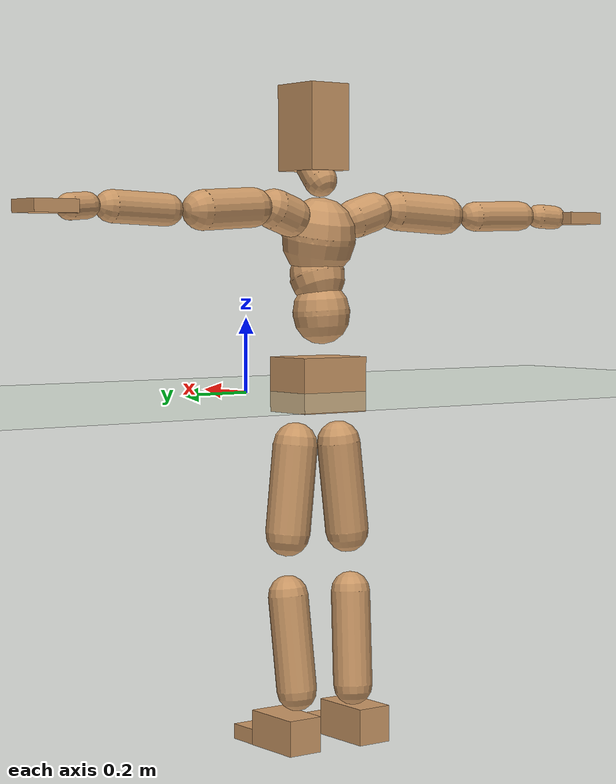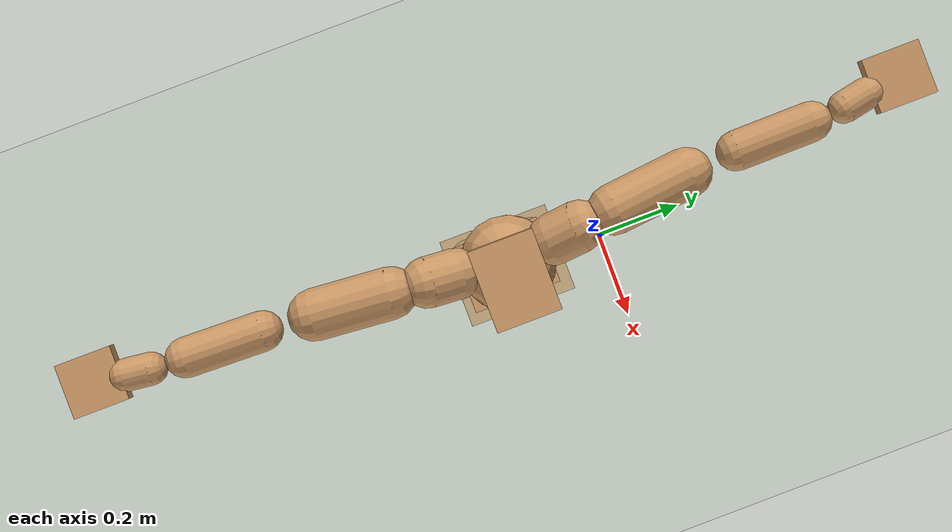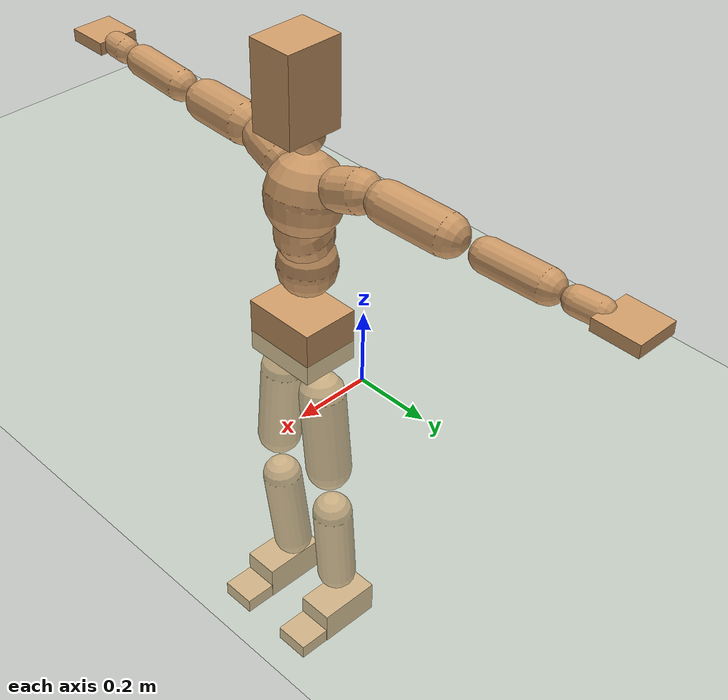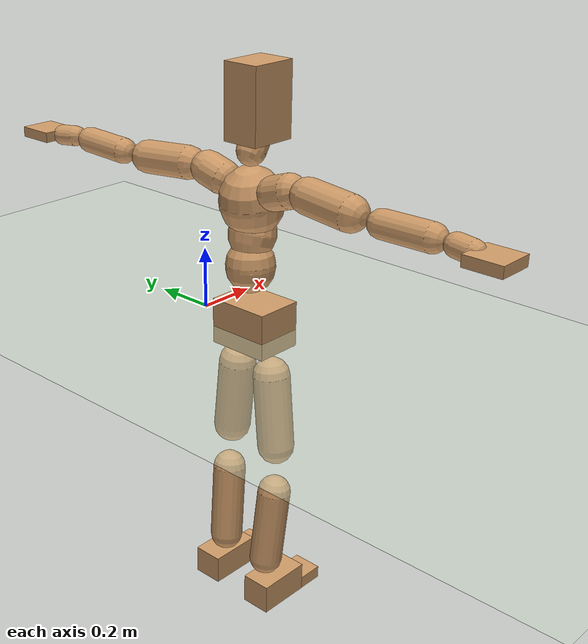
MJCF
<mujoco model="humanoid">
  <compiler coordinate="local" />
  <default>
    <joint damping="0.0" armature="0.01" stiffness="0.0" limited="true" />
    <geom conaffinity="1" condim="3" contype="7" margin="0.001" rgba="0.8 0.6 .4 1" />
  </default>
  <asset>
    <texture type="skybox" builtin="gradient" rgb1=".4 .5 .6" rgb2="0 0 0" width="100" height="100" />
    <texture builtin="flat" height="1278" mark="cross" markrgb="1 1 1" name="texgeom" random="0.01" rgb1="0.8 0.6 0.4" rgb2="0.8 0.6 0.4" type="cube" width="127" />
    <texture builtin="checker" height="100" name="texplane" rgb1="0 0 0" rgb2="0.8 0.8 0.8" type="2d" width="100" />
    <material name="MatPlane" reflectance="0.5" shininess="1" specular="1" texrepeat="60 60" texture="texplane" />
    <material name="geom" texture="texgeom" texuniform="true" />
  </asset>
  <worldbody>
    <light cutoff="100" diffuse="1 1 1" dir="-0 0 -1.3" directional="true" exponent="1" pos="0 0 1.3" specular=".1 .1 .1" />
    <geom conaffinity="1" condim="3" name="floor" pos="0 0 0" rgba="0.8 0.9 0.8 1" size="100 100 .2" type="plane" material="MatPlane" />
    <body name="Pelvis" pos="-0.0033 -0.2278 0.0264">
      <freejoint name="Pelvis" />
      <geom type="box" pos="-0.0099 -0.0014 -0.0098" size="0.0794 0.1037 0.075" quat="1.0000 0.0000 0.0000 0.0000" density="1000" />
      <body name="L_Hip" pos="-0.0069 0.0656 -0.0919">
        <joint name="L_Hip_x" type="hinge" pos="0 0 0" axis="1 0 0" stiffness="800" damping="80" armature="0.02" range="-180.0000 180.0000" />
        <joint name="L_Hip_y" type="hinge" pos="0 0 0" axis="0 1 0" stiffness="800" damping="80" armature="0.02" range="-180.0000 180.0000" />
        <joint name="L_Hip_z" type="hinge" pos="0 0 0" axis="0 0 1" stiffness="800" damping="80" armature="0.02" range="-180.0000 180.0000" />
        <geom type="capsule" contype="1" conaffinity="1" density="2040.816327" fromto="0.0002 0.0084 -0.0806 0.0007 0.0335 -0.3224" size="0.0611" />
        <body name="L_Knee" pos="0.0009 0.0419 -0.4029">
          <joint name="L_Knee_x" type="hinge" pos="0 0 0" axis="1 0 0" stiffness="800" damping="80" armature="0.02" range="-180.0000 180.0000" />
          <joint name="L_Knee_y" type="hinge" pos="0 0 0" axis="0 1 0" stiffness="800" damping="80" armature="0.02" range="-180.0000 180.0000" />
          <joint name="L_Knee_z" type="hinge" pos="0 0 0" axis="0 0 1" stiffness="800" damping="80" armature="0.02" range="-180.0000 180.0000" />
          <geom type="capsule" contype="1" conaffinity="1" density="1234.567901" fromto="-0.0087 -0.0032 -0.0863 -0.0349 -0.0128 -0.3453" size="0.0548" />
          <body name="L_Ankle" pos="-0.0436 -0.0161 -0.4316">
            <joint name="L_Ankle_x" type="hinge" pos="0 0 0" axis="1 0 0" stiffness="800" damping="80" armature="0.02" range="-180.0000 180.0000" />
            <joint name="L_Ankle_y" type="hinge" pos="0 0 0" axis="0 1 0" stiffness="800" damping="80" armature="0.02" range="-180.0000 180.0000" />
            <joint name="L_Ankle_z" type="hinge" pos="0 0 0" axis="0 0 1" stiffness="800" damping="80" armature="0.02" range="-180.0000 180.0000" />
            <geom type="box" pos="0.0263 0.0259 -0.0250" size="0.0896 0.0508 0.0484" quat="1.0000 0.0000 0.0000 0.0000" density="1000" />
            <body name="L_Toe" pos="0.1268 0.0291 -0.0588">
              <joint name="L_Toe_x" type="hinge" pos="0 0 0" axis="1 0 0" stiffness="500" damping="50" armature="0.02" range="-180.0000 180.0000" />
              <joint name="L_Toe_y" type="hinge" pos="0 0 0" axis="0 1 0" stiffness="500" damping="50" armature="0.02" range="-180.0000 180.0000" />
              <joint name="L_Toe_z" type="hinge" pos="0 0 0" axis="0 0 1" stiffness="500" damping="50" armature="0.02" range="-180.0000 180.0000" />
              <geom type="box" pos="0.0268 -0.0032 0.0064" size="0.052 0.0495 0.0211" quat="1.0000 0.0000 0.0000 0.0000" density="1000" />
            </body>
          </body>
        </body>
      </body>
      <body name="R_Hip" pos="-0.0054 -0.0644 -0.0907">
        <joint name="R_Hip_x" type="hinge" pos="0 0 0" axis="1 0 0" stiffness="800" damping="80" armature="0.02" range="-180.0000 180.0000" />
        <joint name="R_Hip_y" type="hinge" pos="0 0 0" axis="0 1 0" stiffness="800" damping="80" armature="0.02" range="-180.0000 180.0000" />
        <joint name="R_Hip_z" type="hinge" pos="0 0 0" axis="0 0 1" stiffness="800" damping="80" armature="0.02" range="-180.0000 180.0000" />
        <geom type="capsule" contype="1" conaffinity="1" density="2040.816327" fromto="-0.0012 -0.0089 -0.0823 -0.0047 -0.0356 -0.3291" size="0.0599" />
        <body name="R_Knee" pos="-0.0058 -0.0445 -0.4114">
          <joint name="R_Knee_x" type="hinge" pos="0 0 0" axis="1 0 0" stiffness="800" damping="80" armature="0.02" range="-180.0000 180.0000" />
          <joint name="R_Knee_y" type="hinge" pos="0 0 0" axis="0 1 0" stiffness="800" damping="80" armature="0.02" range="-180.0000 180.0000" />
          <joint name="R_Knee_z" type="hinge" pos="0 0 0" axis="0 0 1" stiffness="800" damping="80" armature="0.02" range="-180.0000 180.0000" />
          <geom type="capsule" contype="1" conaffinity="1" density="1234.567901" fromto="-0.0084 0.0037 -0.0863 -0.0336 0.0146 -0.3454" size="0.0547" />
          <body name="R_Ankle" pos="-0.042 0.0183 -0.4317">
            <joint name="R_Ankle_x" type="hinge" pos="0 0 0" axis="1 0 0" stiffness="800" damping="80" armature="0.02" range="-180.0000 180.0000" />
            <joint name="R_Ankle_y" type="hinge" pos="0 0 0" axis="0 1 0" stiffness="800" damping="80" armature="0.02" range="-180.0000 180.0000" />
            <joint name="R_Ankle_z" type="hinge" pos="0 0 0" axis="0 0 1" stiffness="800" damping="80" armature="0.02" range="-180.0000 180.0000" />
            <geom type="box" pos="0.0275 -0.0244 -0.0185" size="0.0915 0.0503 0.0504" quat="1.0000 0.0000 0.0000 0.0000" density="1000" />
            <body name="R_Toe" pos="0.1312 -0.0285 -0.0517">
              <joint name="R_Toe_x" type="hinge" pos="0 0 0" axis="1 0 0" stiffness="500" damping="50" armature="0.02" range="-180.0000 180.0000" />
              <joint name="R_Toe_y" type="hinge" pos="0 0 0" axis="0 1 0" stiffness="500" damping="50" armature="0.02" range="-180.0000 180.0000" />
              <joint name="R_Toe_z" type="hinge" pos="0 0 0" axis="0 0 1" stiffness="500" damping="50" armature="0.02" range="-180.0000 180.0000" />
              <geom type="box" pos="0.0247 0.0041 0.0043" size="0.0526 0.0496 0.0216" quat="1.0000 0.0000 0.0000 0.0000" density="1000" />
            </body>
          </body>
        </body>
      </body>
      <body name="Torso" pos="-0.0293 -0.0027 0.1135">
        <joint name="Torso_x" type="hinge" pos="0 0 0" axis="1 0 0" stiffness="1000" damping="100" armature="0.02" range="-180.0000 180.0000" />
        <joint name="Torso_y" type="hinge" pos="0 0 0" axis="0 1 0" stiffness="1000" damping="100" armature="0.02" range="-180.0000 180.0000" />
        <joint name="Torso_z" type="hinge" pos="0 0 0" axis="0 0 1" stiffness="1000" damping="100" armature="0.02" range="-180.0000 180.0000" />
        <geom type="capsule" contype="1" conaffinity="1" density="2040.816327" fromto="0.0018 0.0033 0.0642 0.0022 0.0041 0.0785" size="0.078" />
        <body name="Spine" pos="0.0041 0.0074 0.1427">
          <joint name="Spine_x" type="hinge" pos="0 0 0" axis="1 0 0" stiffness="1000" damping="100" armature="0.02" range="-180.0000 180.0000" />
          <joint name="Spine_y" type="hinge" pos="0 0 0" axis="0 1 0" stiffness="1000" damping="100" armature="0.02" range="-180.0000 180.0000" />
          <joint name="Spine_z" type="hinge" pos="0 0 0" axis="0 0 1" stiffness="1000" damping="100" armature="0.02" range="-180.0000 180.0000" />
          <geom type="capsule" contype="1" conaffinity="1" density="2040.816327" fromto="0.0093 0.0005 0.0251 0.0113 0.0007 0.0306" size="0.0757" />
          <body name="Chest" pos="0.0206 0.0012 0.0557">
            <joint name="Chest_x" type="hinge" pos="0 0 0" axis="1 0 0" stiffness="1000" damping="100" armature="0.02" range="-180.0000 180.0000" />
            <joint name="Chest_y" type="hinge" pos="0 0 0" axis="0 1 0" stiffness="1000" damping="100" armature="0.02" range="-180.0000 180.0000" />
            <joint name="Chest_z" type="hinge" pos="0 0 0" axis="0 0 1" stiffness="1000" damping="100" armature="0.02" range="-180.0000 180.0000" />
            <geom type="capsule" contype="1" conaffinity="1" density="2040.816327" fromto="-0.0138 -0.0013 0.0693 -0.0169 -0.0016 0.0847" size="0.1007" />
            <body name="Neck" pos="-0.0316 -0.0045 0.2174">
              <joint name="Neck_x" type="hinge" pos="0 0 0" axis="1 0 0" stiffness="500" damping="50" armature="0.02" range="-180.0000 180.0000" />
              <joint name="Neck_y" type="hinge" pos="0 0 0" axis="0 1 0" stiffness="500" damping="50" armature="0.02" range="-180.0000 180.0000" />
              <joint name="Neck_z" type="hinge" pos="0 0 0" axis="0 0 1" stiffness="500" damping="50" armature="0.02" range="-180.0000 180.0000" />
              <geom type="capsule" contype="1" conaffinity="1" density="1000" fromto="0.0104 0.0015 0.0136 0.0415 0.0059 0.0542" size="0.0457" />
              <body name="Head" pos="0.0518 0.0073 0.0678">
                <joint name="Head_x" type="hinge" pos="0 0 0" axis="1 0 0" stiffness="500" damping="50" armature="0.02" range="-180.0000 180.0000" />
                <joint name="Head_y" type="hinge" pos="0 0 0" axis="0 1 0" stiffness="500" damping="50" armature="0.02" range="-180.0000 180.0000" />
                <joint name="Head_z" type="hinge" pos="0 0 0" axis="0 0 1" stiffness="500" damping="50" armature="0.02" range="-180.0000 180.0000" />
                <geom type="box" pos="-0.0121 -0.0039 0.0880" size="0.0774 0.062 0.1164" quat="1.0000 0.0000 0.0000 0.0000" density="1000" />

              </body>
            </body>
            <body name="L_Thorax" pos="-0.0283 0.0826 0.1243">
              <joint name="L_Thorax_x" type="hinge" pos="0 0 0" axis="1 0 0" stiffness="500" damping="50" armature="0.02" range="-180.0000 180.0000" />
              <joint name="L_Thorax_y" type="hinge" pos="0 0 0" axis="0 1 0" stiffness="500" damping="50" armature="0.02" range="-180.0000 180.0000" />
              <joint name="L_Thorax_z" type="hinge" pos="0 0 0" axis="0 0 1" stiffness="500" damping="50" armature="0.02" range="-180.0000 180.0000" />
              <geom type="capsule" contype="1" conaffinity="1" density="1000" fromto="-0.0019 0.0196 0.0063 -0.0077 0.0782 0.0254" size="0.0544" />
              <body name="L_Shoulder" pos="-0.0096 0.0978 0.0317">
                <joint name="L_Shoulder_x" type="hinge" pos="0 0 0" axis="1 0 0" stiffness="500" damping="50" armature="0.02" range="-720.0000 720.0000" />
                <joint name="L_Shoulder_y" type="hinge" pos="0 0 0" axis="0 1 0" stiffness="500" damping="50" armature="0.02" range="-720.0000 720.0000" />
                <joint name="L_Shoulder_z" type="hinge" pos="0 0 0" axis="0 0 1" stiffness="500" damping="50" armature="0.02" range="-720.0000 720.0000" />
                <geom type="capsule" contype="1" conaffinity="1" density="1000" fromto="-0.0057 0.0557 -0.0035 -0.0226 0.2229 -0.0138" size="0.053" />
                <body name="L_Elbow" pos="-0.0283 0.2786 -0.0173">
                  <joint name="L_Elbow_x" type="hinge" pos="0 0 0" axis="1 0 0" stiffness="500" damping="50" armature="0.02" range="-720.0000 720.0000" />
                  <joint name="L_Elbow_y" type="hinge" pos="0 0 0" axis="0 1 0" stiffness="500" damping="50" armature="0.02" range="-720.0000 720.0000" />
                  <joint name="L_Elbow_z" type="hinge" pos="0 0 0" axis="0 0 1" stiffness="500" damping="50" armature="0.02" range="-720.0000 720.0000" />
                  <geom type="capsule" contype="1" conaffinity="1" density="1000" fromto="-0.0005 0.0544 0.0020 -0.0020 0.2176 0.0081" size="0.0418" />
                  <body name="L_Wrist" pos="-0.0025 0.2719 0.0101">
                    <joint name="L_Wrist_x" type="hinge" pos="0 0 0" axis="1 0 0" stiffness="300" damping="30" armature="0.02" range="-180.0000 180.0000" />
                    <joint name="L_Wrist_y" type="hinge" pos="0 0 0" axis="0 1 0" stiffness="300" damping="30" armature="0.02" range="-180.0000 180.0000" />
                    <joint name="L_Wrist_z" type="hinge" pos="0 0 0" axis="0 0 1" stiffness="300" damping="30" armature="0.02" range="-180.0000 180.0000" />
                    <geom type="capsule" contype="1" conaffinity="1" density="1000" fromto="-0.0034 0.0180 -0.0014 -0.0137 0.0719 -0.0056" size="0.0338" />
                    <body name="L_Hand" pos="-0.0171 0.0899 -0.0069">
                      <joint name="L_Hand_x" type="hinge" pos="0 0 0" axis="1 0 0" stiffness="300" damping="30" armature="0.02" range="-180.0000 180.0000" />
                      <joint name="L_Hand_y" type="hinge" pos="0 0 0" axis="0 1 0" stiffness="300" damping="30" armature="0.02" range="-180.0000 180.0000" />
                      <joint name="L_Hand_z" type="hinge" pos="0 0 0" axis="0 0 1" stiffness="300" damping="30" armature="0.02" range="-180.0000 180.0000" />
                      <geom type="box" pos="-0.0052 0.0521 0.0012" size="0.057 0.0614 0.0166" quat="1.0000 0.0000 0.0000 0.0000" density="1000" />
                    </body>
                  </body>
                </body>
              </body>
            </body>
            <body name="R_Thorax" pos="-0.0324 -0.0866 0.1204">
              <joint name="R_Thorax_x" type="hinge" pos="0 0 0" axis="1 0 0" stiffness="500" damping="50" armature="0.02" range="-180.0000 180.0000" />
              <joint name="R_Thorax_y" type="hinge" pos="0 0 0" axis="0 1 0" stiffness="500" damping="50" armature="0.02" range="-180.0000 180.0000" />
              <joint name="R_Thorax_z" type="hinge" pos="0 0 0" axis="0 0 1" stiffness="500" damping="50" armature="0.02" range="-180.0000 180.0000" />
              <geom type="capsule" contype="1" conaffinity="1" density="1000" fromto="-0.0016 -0.0207 0.0070 -0.0064 -0.0828 0.0278" size="0.0532" />
              <body name="R_Shoulder" pos="-0.008 -0.1034 0.0348">
                <joint name="R_Shoulder_x" type="hinge" pos="0 0 0" axis="1 0 0" stiffness="500" damping="50" armature="0.02" range="-720.0000 720.0000" />
                <joint name="R_Shoulder_y" type="hinge" pos="0 0 0" axis="0 1 0" stiffness="500" damping="50" armature="0.02" range="-720.0000 720.0000" />
                <joint name="R_Shoulder_z" type="hinge" pos="0 0 0" axis="0 0 1" stiffness="500" damping="50" armature="0.02" range="-720.0000 720.0000" />
                <geom type="capsule" contype="1" conaffinity="1" density="1000" fromto="-0.0045 -0.0542 -0.0032 -0.0182 -0.2168 -0.0128" size="0.0544" />
                <body name="R_Elbow" pos="-0.0227 -0.271 -0.016">
                  <joint name="R_Elbow_x" type="hinge" pos="0 0 0" axis="1 0 0" stiffness="500" damping="50" armature="0.02" range="-720.0000 720.0000" />
                  <joint name="R_Elbow_y" type="hinge" pos="0 0 0" axis="0 1 0" stiffness="500" damping="50" armature="0.02" range="-720.0000 720.0000" />
                  <joint name="R_Elbow_z" type="hinge" pos="0 0 0" axis="0 0 1" stiffness="500" damping="50" armature="0.02" range="-720.0000 720.0000" />
                  <geom type="capsule" contype="1" conaffinity="1" density="1000" fromto="-0.0017 -0.0551 0.0013 -0.0067 -0.2205 0.0053" size="0.0421" />
                  <body name="R_Wrist" pos="-0.0083 -0.2756 0.0066">
                    <joint name="R_Wrist_x" type="hinge" pos="0 0 0" axis="1 0 0" stiffness="300" damping="30" armature="0.02" range="-180.0000 180.0000" />
                    <joint name="R_Wrist_y" type="hinge" pos="0 0 0" axis="0 1 0" stiffness="300" damping="30" armature="0.02" range="-180.0000 180.0000" />
                    <joint name="R_Wrist_z" type="hinge" pos="0 0 0" axis="0 0 1" stiffness="300" damping="30" armature="0.02" range="-180.0000 180.0000" />
                    <geom type="capsule" contype="1" conaffinity="1" density="1000" fromto="-0.0021 -0.0180 -0.0010 -0.0083 -0.0718 -0.0041" size="0.0343" />
                    <body name="R_Hand" pos="-0.0103 -0.0898 -0.0051">
                      <joint name="R_Hand_x" type="hinge" pos="0 0 0" axis="1 0 0" stiffness="300" damping="30" armature="0.02" range="-180.0000 180.0000" />
                      <joint name="R_Hand_y" type="hinge" pos="0 0 0" axis="0 1 0" stiffness="300" damping="30" armature="0.02" range="-180.0000 180.0000" />
                      <joint name="R_Hand_z" type="hinge" pos="0 0 0" axis="0 0 1" stiffness="300" damping="30" armature="0.02" range="-180.0000 180.0000" />
                      <geom type="box" pos="-0.0079 -0.0484 -0.0009" size="0.0575 0.0595 0.0171" quat="1.0000 0.0000 0.0000 0.0000" density="1000" />
                    </body>
                  </body>
                </body>
              </body>
            </body>
          </body>
        </body>
      </body>
    </body>
  </worldbody>
  <actuator>
    <motor name="L_Hip_x" joint="L_Hip_x" gear="500" />
    <motor name="L_Hip_y" joint="L_Hip_y" gear="500" />
    <motor name="L_Hip_z" joint="L_Hip_z" gear="500" />
    <motor name="L_Knee_x" joint="L_Knee_x" gear="500" />
    <motor name="L_Knee_y" joint="L_Knee_y" gear="500" />
    <motor name="L_Knee_z" joint="L_Knee_z" gear="500" />
    <motor name="L_Ankle_x" joint="L_Ankle_x" gear="500" />
    <motor name="L_Ankle_y" joint="L_Ankle_y" gear="500" />
    <motor name="L_Ankle_z" joint="L_Ankle_z" gear="500" />
    <motor name="L_Toe_x" joint="L_Toe_x" gear="500" />
    <motor name="L_Toe_y" joint="L_Toe_y" gear="500" />
    <motor name="L_Toe_z" joint="L_Toe_z" gear="500" />
    <motor name="R_Hip_x" joint="R_Hip_x" gear="500" />
    <motor name="R_Hip_y" joint="R_Hip_y" gear="500" />
    <motor name="R_Hip_z" joint="R_Hip_z" gear="500" />
    <motor name="R_Knee_x" joint="R_Knee_x" gear="500" />
    <motor name="R_Knee_y" joint="R_Knee_y" gear="500" />
    <motor name="R_Knee_z" joint="R_Knee_z" gear="500" />
    <motor name="R_Ankle_x" joint="R_Ankle_x" gear="500" />
    <motor name="R_Ankle_y" joint="R_Ankle_y" gear="500" />
    <motor name="R_Ankle_z" joint="R_Ankle_z" gear="500" />
    <motor name="R_Toe_x" joint="R_Toe_x" gear="500" />
    <motor name="R_Toe_y" joint="R_Toe_y" gear="500" />
    <motor name="R_Toe_z" joint="R_Toe_z" gear="500" />
    <motor name="Torso_x" joint="Torso_x" gear="500" />
    <motor name="Torso_y" joint="Torso_y" gear="500" />
    <motor name="Torso_z" joint="Torso_z" gear="500" />
    <motor name="Spine_x" joint="Spine_x" gear="500" />
    <motor name="Spine_y" joint="Spine_y" gear="500" />
    <motor name="Spine_z" joint="Spine_z" gear="500" />
    <motor name="Chest_x" joint="Chest_x" gear="500" />
    <motor name="Chest_y" joint="Chest_y" gear="500" />
    <motor name="Chest_z" joint="Chest_z" gear="500" />
    <motor name="Neck_x" joint="Neck_x" gear="500" />
    <motor name="Neck_y" joint="Neck_y" gear="500" />
    <motor name="Neck_z" joint="Neck_z" gear="500" />
    <motor name="Head_x" joint="Head_x" gear="500" />
    <motor name="Head_y" joint="Head_y" gear="500" />
    <motor name="Head_z" joint="Head_z" gear="500" />
    <motor name="L_Thorax_x" joint="L_Thorax_x" gear="500" />
    <motor name="L_Thorax_y" joint="L_Thorax_y" gear="500" />
    <motor name="L_Thorax_z" joint="L_Thorax_z" gear="500" />
    <motor name="L_Shoulder_x" joint="L_Shoulder_x" gear="500" />
    <motor name="L_Shoulder_y" joint="L_Shoulder_y" gear="500" />
    <motor name="L_Shoulder_z" joint="L_Shoulder_z" gear="500" />
    <motor name="L_Elbow_x" joint="L_Elbow_x" gear="500" />
    <motor name="L_Elbow_y" joint="L_Elbow_y" gear="500" />
    <motor name="L_Elbow_z" joint="L_Elbow_z" gear="500" />
    <motor name="L_Wrist_x" joint="L_Wrist_x" gear="500" />
    <motor name="L_Wrist_y" joint="L_Wrist_y" gear="500" />
    <motor name="L_Wrist_z" joint="L_Wrist_z" gear="500" />
    <motor name="L_Hand_x" joint="L_Hand_x" gear="500" />
    <motor name="L_Hand_y" joint="L_Hand_y" gear="500" />
    <motor name="L_Hand_z" joint="L_Hand_z" gear="500" />
    <motor name="R_Thorax_x" joint="R_Thorax_x" gear="500" />
    <motor name="R_Thorax_y" joint="R_Thorax_y" gear="500" />
    <motor name="R_Thorax_z" joint="R_Thorax_z" gear="500" />
    <motor name="R_Shoulder_x" joint="R_Shoulder_x" gear="500" />
    <motor name="R_Shoulder_y" joint="R_Shoulder_y" gear="500" />
    <motor name="R_Shoulder_z" joint="R_Shoulder_z" gear="500" />
    <motor name="R_Elbow_x" joint="R_Elbow_x" gear="500" />
    <motor name="R_Elbow_y" joint="R_Elbow_y" gear="500" />
    <motor name="R_Elbow_z" joint="R_Elbow_z" gear="500" />
    <motor name="R_Wrist_x" joint="R_Wrist_x" gear="500" />
    <motor name="R_Wrist_y" joint="R_Wrist_y" gear="500" />
    <motor name="R_Wrist_z" joint="R_Wrist_z" gear="500" />
    <motor name="R_Hand_x" joint="R_Hand_x" gear="500" />
    <motor name="R_Hand_y" joint="R_Hand_y" gear="500" />
    <motor name="R_Hand_z" joint="R_Hand_z" gear="500" />
  </actuator>
  <contact>
    <exclude body1="Torso" body2="Chest" />
    <exclude body1="Head" body2="Chest" />
    <exclude body1="R_Knee" body2="R_Toe" />
    <exclude body1="R_Knee" body2="L_Ankle" />
    <exclude body1="R_Knee" body2="L_Toe" />
    <exclude body1="L_Knee" body2="L_Toe" />
    <exclude body1="L_Knee" body2="R_Ankle" />
    <exclude body1="L_Knee" body2="R_Toe" />
    <exclude body1="L_Shoulder" body2="Chest" />
    <exclude body1="R_Shoulder" body2="Chest" />
  </contact>
  <sensor />
  <size njmax="700" nconmax="700" />
</mujoco>
